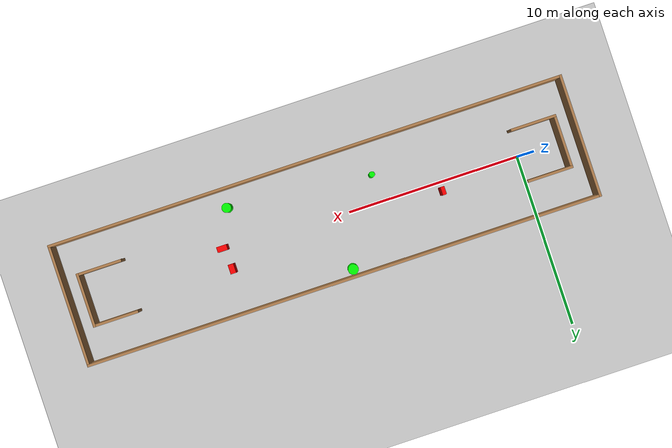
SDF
<sdf version="1.7">
 <world name="default">
  <light name="sun" type="directional">
   <pose>0 0 10 0 -0 0</pose>
   <diffuse>0.8 0.8 0.8 1</diffuse>
   <specular>0.2 0.2 0.2 1</specular>
   <attenuation>
    <range>1000</range>
    <constant>0.9</constant>
    <linear>0.01</linear>
    <quadratic>0.001</quadratic>
   </attenuation>
   <direction>-0.5 0.1 -0.9</direction>
   <spot><inner_angle>0</inner_angle><outer_angle>0</outer_angle><falloff>0</falloff></spot>
  </light>
  <model name="ground_plane">
   <static>1</static>
   <link name="link">
    <collision name="collision">
     <geometry><plane><normal>0 0 1</normal><size>100 100</size></plane></geometry>
     <surface>
      <contact><collide_bitmask>65535</collide_bitmask></contact>
      <friction><ode><mu>100</mu><mu2>50</mu2></ode></friction>
     </surface>
    </collision>
    <visual name="visual">
     <cast_shadows>0</cast_shadows>
     <geometry><plane><normal>0 0 1</normal><size>100 100</size></plane></geometry>
     <material>
      <script><uri>file://media/materials/scripts/gazebo.material</uri><name>Gazebo/Grey</name></script>
     </material>
    </visual>
   </link>
  </model>
  <gravity>0 0 -9.8</gravity>
  <magnetic_field>6e-06 2.3e-05 -4.2e-05</magnetic_field>
  <atmosphere type="adiabatic"/>
  <physics type="ode">
   <max_step_size>0.001</max_step_size>
   <real_time_factor>1</real_time_factor>
   <real_time_update_rate>1000</real_time_update_rate>
  </physics>
  <scene><ambient>0.4 0.4 0.4 1</ambient><background>0.7 0.7 0.7 1</background><shadows>1</shadows></scene>
  <spherical_coordinates>
   <surface_model>EARTH_WGS84</surface_model>
   <latitude_deg>0</latitude_deg>
   <longitude_deg>0</longitude_deg>
   <elevation>0</elevation>
   <heading_deg>0</heading_deg>
  </spherical_coordinates>
  <model name="my_base_walls">
   <link name="Wall_0">
    <collision name="Wall_0_Collision">
     <geometry><box><size>7.15 0.15 2.5</size></box></geometry>
     <pose>0 0 1.25 0 -0 0</pose>
    </collision>
    <visual name="Wall_0_Visual">
     <pose>0 0 1.25 0 -0 0</pose>
     <geometry><box><size>7.15 0.15 2.5</size></box></geometry>
     <material>
      <script><uri>file://media/materials/scripts/gazebo.material</uri><name>Gazebo/Wood</name></script>
      <ambient>1 1 1 1</ambient>
     </material>
     <meta><layer>0</layer></meta>
    </visual>
    <pose>-15 0 0 0 -0 1.5708</pose>
   </link>
   <link name="Wall_10">
    <collision name="Wall_10_Collision">
     <geometry><box><size>2.65 0.15 2.5</size></box></geometry>
     <pose>0 0 1.25 0 -0 0</pose>
    </collision>
    <visual name="Wall_10_Visual">
     <pose>0 0 1.25 0 -0 0</pose>
     <geometry><box><size>2.65 0.15 2.5</size></box></geometry>
     <material>
      <script><uri>file://media/materials/scripts/gazebo.material</uri><name>Gazebo/Wood</name></script>
      <ambient>1 1 1 1</ambient>
     </material>
     <meta><layer>0</layer></meta>
    </visual>
    <pose>-12.75 -1.5 0 0 -0 0</pose>
   </link>
   <link name="Wall_12">
    <collision name="Wall_12_Collision">
     <geometry><box><size>2.65 0.15 2.5</size></box></geometry>
     <pose>0 0 1.25 0 -0 0</pose>
    </collision>
    <visual name="Wall_12_Visual">
     <pose>0 0 1.25 0 -0 0</pose>
     <geometry><box><size>2.65 0.15 2.5</size></box></geometry>
     <material>
      <script><uri>file://media/materials/scripts/gazebo.material</uri><name>Gazebo/Wood</name></script>
      <ambient>1 1 1 1</ambient>
     </material>
     <meta><layer>0</layer></meta>
    </visual>
    <pose>-12.75 1.5 0 0 -0 0</pose>
   </link>
   <link name="Wall_14">
    <collision name="Wall_14_Collision">
     <geometry><box><size>3.15 0.15 2.5</size></box></geometry>
     <pose>0 0 1.25 0 -0 0</pose>
    </collision>
    <visual name="Wall_14_Visual">
     <pose>0 0 1.25 0 -0 0</pose>
     <geometry><box><size>3.15 0.15 2.5</size></box></geometry>
     <material>
      <script><uri>file://media/materials/scripts/gazebo.material</uri><name>Gazebo/Wood</name></script>
      <ambient>1 1 1 1</ambient>
     </material>
     <meta><layer>0</layer></meta>
    </visual>
    <pose>14 0 0 0 -0 -1.5708</pose>
   </link>
   <link name="Wall_15">
    <collision name="Wall_15_Collision">
     <geometry><box><size>2.65 0.15 2.5</size></box></geometry>
     <pose>0 0 1.25 0 -0 0</pose>
    </collision>
    <visual name="Wall_15_Visual">
     <pose>0 0 1.25 0 -0 0</pose>
     <geometry><box><size>2.65 0.15 2.5</size></box></geometry>
     <material>
      <script><uri>file://media/materials/scripts/gazebo.material</uri><name>Gazebo/Wood</name></script>
      <ambient>1 1 1 1</ambient>
     </material>
     <meta><layer>0</layer></meta>
    </visual>
    <pose>12.75 -1.5 0 0 -0 3.14159</pose>
   </link>
   <link name="Wall_17">
    <collision name="Wall_17_Collision">
     <geometry><box><size>2.65 0.15 2.5</size></box></geometry>
     <pose>0 0 1.25 0 -0 0</pose>
    </collision>
    <visual name="Wall_17_Visual">
     <pose>0 0 1.25 0 -0 0</pose>
     <geometry><box><size>2.65 0.15 2.5</size></box></geometry>
     <material>
      <script><uri>file://media/materials/scripts/gazebo.material</uri><name>Gazebo/Wood</name></script>
      <ambient>1 1 1 1</ambient>
     </material>
     <meta><layer>0</layer></meta>
    </visual>
    <pose>12.75 1.5 0 0 -0 3.14159</pose>
   </link>
   <link name="Wall_2">
    <collision name="Wall_2_Collision">
     <geometry><box><size>30.15 0.15 2.5</size></box></geometry>
     <pose>0 0 1.25 0 -0 0</pose>
    </collision>
    <visual name="Wall_2_Visual">
     <pose>0 0 1.25 0 -0 0</pose>
     <geometry><box><size>30.15 0.15 2.5</size></box></geometry>
     <material>
      <script><uri>file://media/materials/scripts/gazebo.material</uri><name>Gazebo/Wood</name></script>
      <ambient>1 1 1 1</ambient>
     </material>
     <meta><layer>0</layer></meta>
    </visual>
    <pose>-0 -3.5 0 0 -0 0</pose>
   </link>
   <link name="Wall_4">
    <collision name="Wall_4_Collision">
     <geometry><box><size>30.15 0.15 2.5</size></box></geometry>
     <pose>0 0 1.25 0 -0 0</pose>
    </collision>
    <visual name="Wall_4_Visual">
     <pose>0 0 1.25 0 -0 0</pose>
     <geometry><box><size>30.15 0.15 2.5</size></box></geometry>
     <material>
      <script><uri>file://media/materials/scripts/gazebo.material</uri><name>Gazebo/Wood</name></script>
      <ambient>1 1 1 1</ambient>
     </material>
     <meta><layer>0</layer></meta>
    </visual>
    <pose>-0 3.5 0 0 -0 0</pose>
   </link>
   <link name="Wall_6">
    <collision name="Wall_6_Collision">
     <geometry><box><size>7.15 0.15 2.5</size></box></geometry>
     <pose>0 0 1.25 0 -0 0</pose>
    </collision>
    <visual name="Wall_6_Visual">
     <pose>0 0 1.25 0 -0 0</pose>
     <geometry><box><size>7.15 0.15 2.5</size></box></geometry>
     <material>
      <script><uri>file://media/materials/scripts/gazebo.material</uri><name>Gazebo/Wood</name></script>
      <ambient>1 1 1 1</ambient>
     </material>
     <meta><layer>0</layer></meta>
    </visual>
    <pose>15 0 0 0 -0 -1.5708</pose>
   </link>
   <link name="Wall_9">
    <collision name="Wall_9_Collision">
     <geometry><box><size>3.15 0.15 2.5</size></box></geometry>
     <pose>0 0 1.25 0 -0 0</pose>
    </collision>
    <visual name="Wall_9_Visual">
     <pose>0 0 1.25 0 -0 0</pose>
     <geometry><box><size>3.15 0.15 2.5</size></box></geometry>
     <material>
      <script><uri>file://media/materials/scripts/gazebo.material</uri><name>Gazebo/Wood</name></script>
      <ambient>1 1 1 1</ambient>
     </material>
     <meta><layer>0</layer></meta>
    </visual>
    <pose>-14 0 0 0 -0 -1.5708</pose>
   </link>
   <static>1</static>
   <pose>11.5 0 0 0 -0 0</pose>
  </model>
  <model name="cylinder1">
   <static>1</static>
   <link name="link">
    <inertial>
     <mass>1</mass>
     <inertia><ixx>0.5</ixx><ixy>0</ixy><ixz>0</ixz><iyy>0.5</iyy><iyz>0</iyz><izz>1</izz></inertia>
    </inertial>
    <collision name="collision">
     <geometry><cylinder><radius>0.29917603852993635</radius><length>2.5</length></cylinder></geometry>
    </collision>
    <visual name="visual">
     <geometry><cylinder><radius>0.29917603852993635</radius><length>2.5</length></cylinder></geometry>
     <material>
      <ambient>0 1 0 1</ambient>
      <diffuse>0 1 0 1</diffuse>
      <specular>0.1 0.1 0.1 1</specular>
      <emissive>0 0 0 0</emissive>
     </material>
    </visual>
   </link>
   <pose>10.82866552702373 3.0668317423768023 1.25 0 0 0</pose>
  </model>
  <model name="cylinder2">
   <static>1</static>
   <link name="link">
    <inertial>
     <mass>1</mass>
     <inertia><ixx>0.5</ixx><ixy>0</ixy><ixz>0</ixz><iyy>0.5</iyy><iyz>0</iyz><izz>1</izz></inertia>
    </inertial>
    <collision name="collision">
     <geometry><cylinder><radius>0.16344262866929063</radius><length>2.5</length></cylinder></geometry>
    </collision>
    <visual name="visual">
     <geometry><cylinder><radius>0.16344262866929063</radius><length>2.5</length></cylinder></geometry>
     <material>
      <ambient>0 1 0 1</ambient>
      <diffuse>0 1 0 1</diffuse>
      <specular>0.1 0.1 0.1 1</specular>
      <emissive>0 0 0 0</emissive>
     </material>
    </visual>
   </link>
   <pose>8.175022597686688 -1.6216319357478406 1.25 0 0 0</pose>
  </model>
  <model name="cylinder3">
   <static>1</static>
   <link name="link">
    <inertial>
     <mass>1</mass>
     <inertia><ixx>0.5</ixx><ixy>0</ixy><ixz>0</ixz><iyy>0.5</iyy><iyz>0</iyz><izz>1</izz></inertia>
    </inertial>
    <collision name="collision">
     <geometry><cylinder><radius>0.271341748212381</radius><length>2.5</length></cylinder></geometry>
    </collision>
    <visual name="visual">
     <geometry><cylinder><radius>0.271341748212381</radius><length>2.5</length></cylinder></geometry>
     <material>
      <ambient>0 1 0 1</ambient>
      <diffuse>0 1 0 1</diffuse>
      <specular>0.1 0.1 0.1 1</specular>
      <emissive>0 0 0 0</emissive>
     </material>
    </visual>
   </link>
   <pose>16.446966435384148 -2.4151227937670967 1.25 0 0 0</pose>
  </model>
  <model name="box1">
   <static>1</static>
   <link name="link">
    <inertial>
     <mass>1</mass>
     <inertia><ixx>0.083</ixx><ixy>0</ixy><ixz>0</ixz><iyy>0.083</iyy><iyz>0</iyz><izz>0.083</izz></inertia>
    </inertial>
    <collision name="collision">
     <geometry><box><size>0.32118177883906174 0.5386623582377622 2.5</size></box></geometry>
    </collision>
    <visual name="visual">
     <geometry><box><size>0.32118177883906174 0.5386623582377622 2.5</size></box></geometry>
     <material>
      <ambient>1 0 0 1</ambient>
      <diffuse>1 0 0 1</diffuse>
      <specular>0.1 0.1 0.1 1</specular>
      <emissive>0 0 0 0</emissive>
     </material>
    </visual>
    <sensor name="my_contact" type="contact">
     <contact><collision>box_collision</collision><topic>__default_topic__</topic></contact>
    </sensor>
   </link>
   <pose>17.226514138398507 0.9143669082838697 1.25 0 0 0</pose>
  </model>
  <model name="box2">
   <static>1</static>
   <link name="link">
    <inertial>
     <mass>1</mass>
     <inertia><ixx>0.083</ixx><ixy>0</ixy><ixz>0</ixz><iyy>0.083</iyy><iyz>0</iyz><izz>0.083</izz></inertia>
    </inertial>
    <collision name="collision">
     <geometry><box><size>0.5785126048631042 0.3205963585741413 2.5</size></box></geometry>
    </collision>
    <visual name="visual">
     <geometry><box><size>0.5785126048631042 0.3205963585741413 2.5</size></box></geometry>
     <material>
      <ambient>1 0 0 1</ambient>
      <diffuse>1 0 0 1</diffuse>
      <specular>0.1 0.1 0.1 1</specular>
      <emissive>0 0 0 0</emissive>
     </material>
    </visual>
    <sensor name="my_contact" type="contact">
     <contact><collision>box_collision</collision><topic>__default_topic__</topic></contact>
    </sensor>
   </link>
   <pose>17.393843610643884 -0.33977975016396966 1.25 0 0 0</pose>
  </model>
  <model name="box3">
   <static>1</static>
   <link name="link">
    <inertial>
     <mass>1</mass>
     <inertia><ixx>0.083</ixx><ixy>0</ixy><ixz>0</ixz><iyy>0.083</iyy><iyz>0</iyz><izz>0.083</izz></inertia>
    </inertial>
    <collision name="collision">
     <geometry><box><size>0.22794352290321274 0.47141189573881886 2.5</size></box></geometry>
    </collision>
    <visual name="visual">
     <geometry><box><size>0.22794352290321274 0.47141189573881886 2.5</size></box></geometry>
     <material>
      <ambient>1 0 0 1</ambient>
      <diffuse>1 0 0 1</diffuse>
      <specular>0.1 0.1 0.1 1</specular>
      <emissive>0 0 0 0</emissive>
     </material>
    </visual>
    <sensor name="my_contact" type="contact">
     <contact><collision>box_collision</collision><topic>__default_topic__</topic></contact>
    </sensor>
   </link>
   <pose>4.692037513182353 0.5005985636715415 1.25 0 0 0</pose>
  </model>
 </world>
</sdf>
